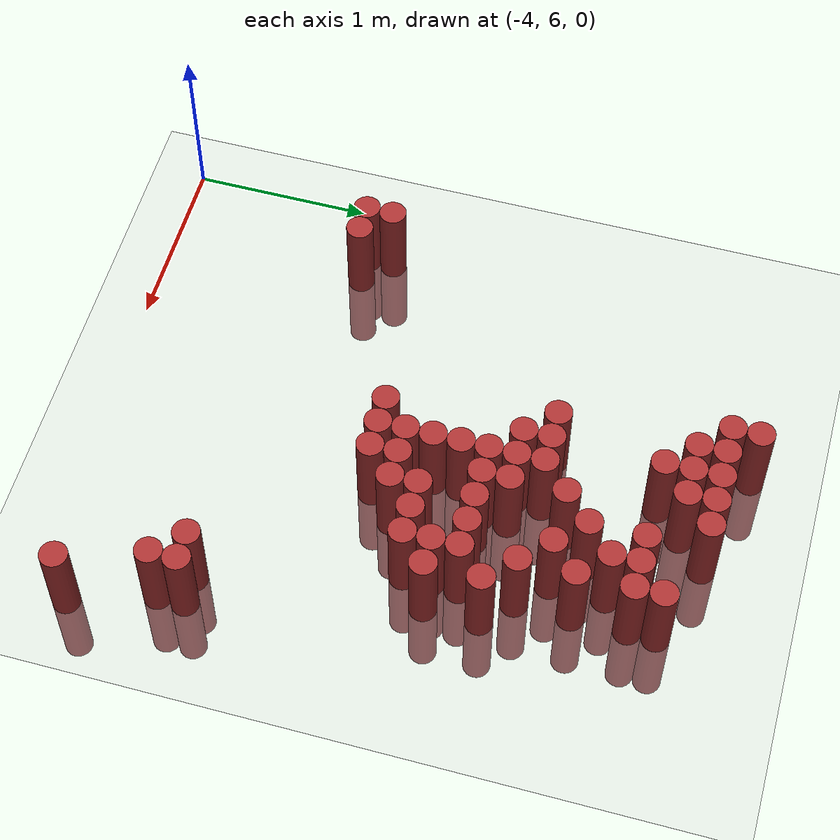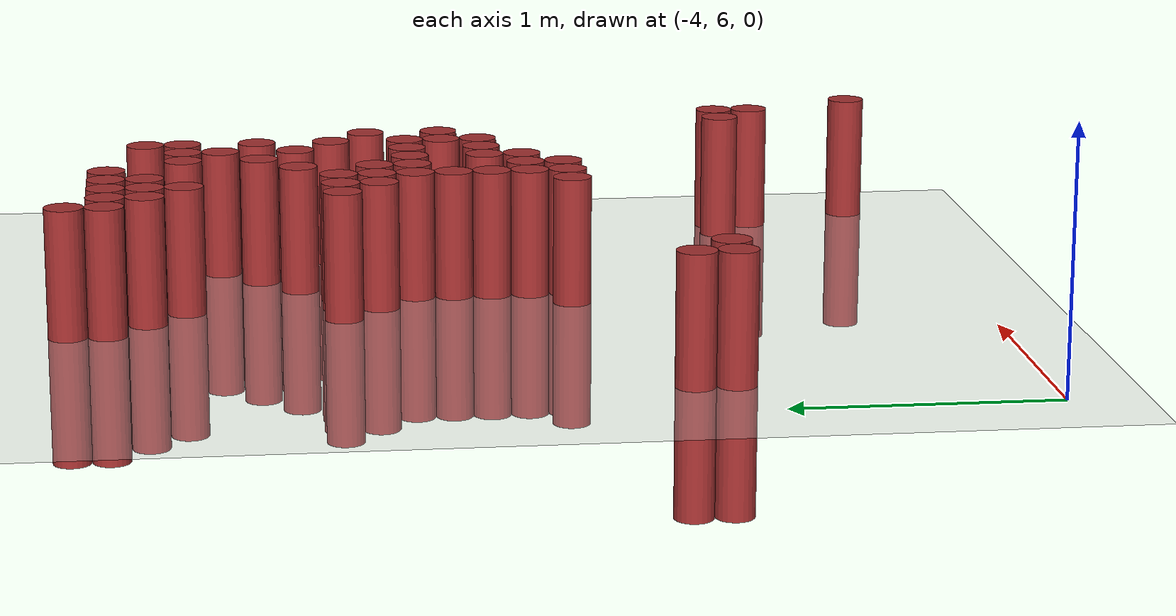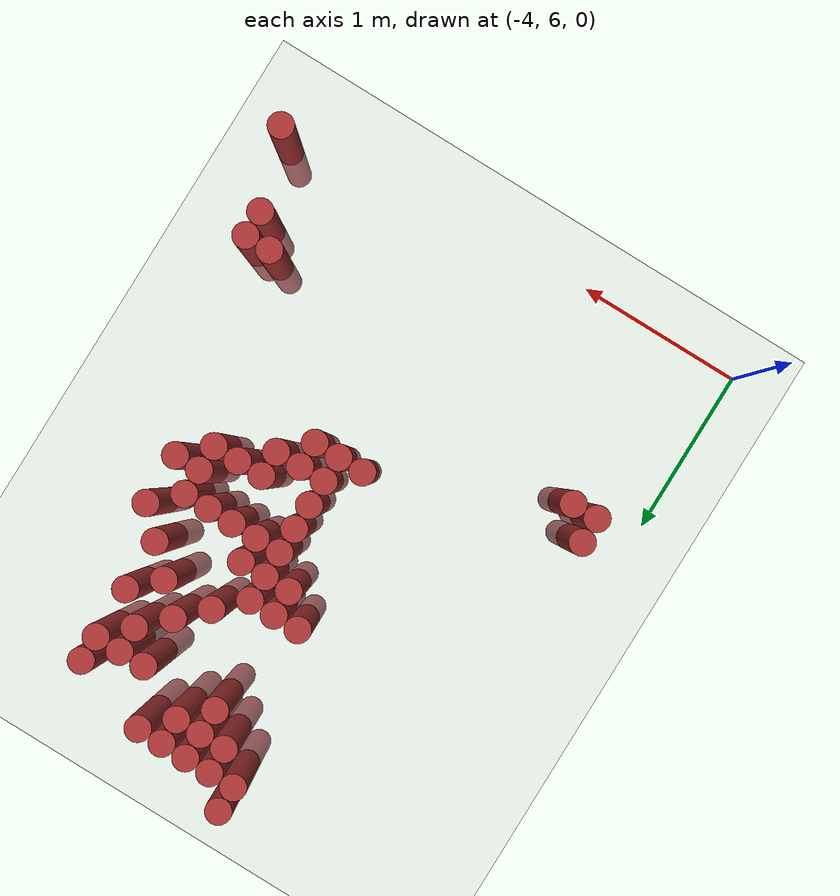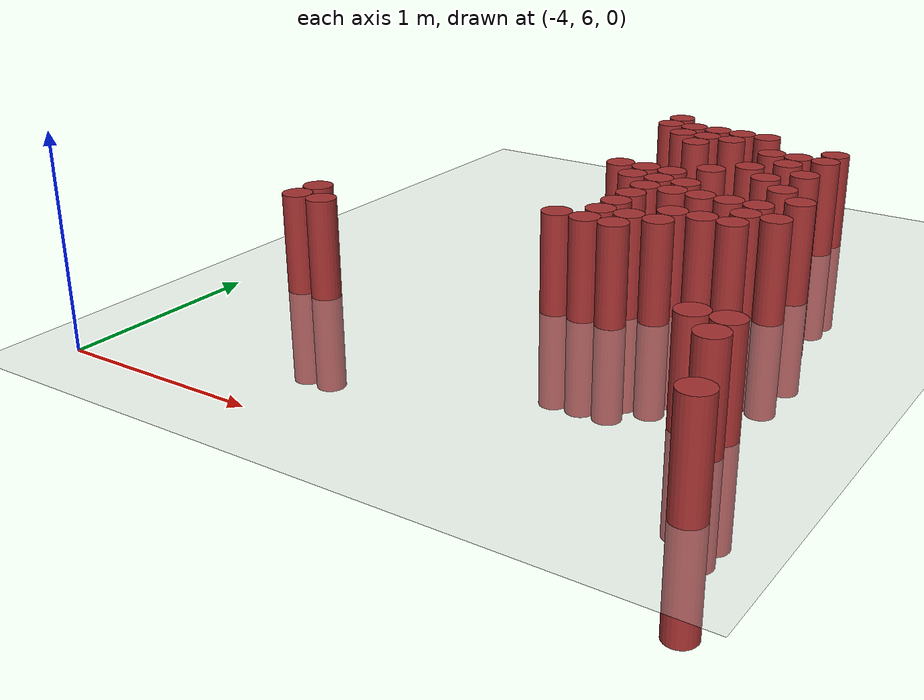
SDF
<sdf version="1.6">
 <world name="default">
  <model name="ground_plane">
   <static>1</static>
   <link name="link">
    <collision name="collision">
     <geometry><plane><normal>0 0 1</normal><size>100 100</size></plane></geometry>
     <surface><friction><ode><mu>100</mu><mu2>50</mu2></ode></friction></surface>
    </collision>
    <visual name="visual">
     <cast_shadows>0</cast_shadows>
     <geometry><plane><normal>0 0 1</normal><size>100 100</size></plane></geometry>
     <material>
      <script><uri>file://media/materials/scripts/gazebo.material</uri><name>Gazebo/Grey</name></script>
     </material>
    </visual>
   </link>
  </model>
  <model name="unit_cylinder_169">
   <static>1</static>
   <pose>-3.675000 7.125000 0.000000 0.000000 0.000000 0.000000</pose>
   <link name="link">
    <inertial>
     <mass>1</mass>
     <inertia><ixx>0.145833</ixx><ixy>0</ixy><ixz>0</ixz><iyy>0.145833</iyy><iyz>0</iyz><izz>0.125</izz></inertia>
    </inertial>
    <collision name="collision">
     <geometry><cylinder><radius>0.075000</radius><length>1</length></cylinder></geometry>
    </collision>
    <visual name="visual">
     <geometry><cylinder><radius>0.075000</radius><length>1</length></cylinder></geometry>
     <material>
      <ambient>0.648000 0.192000 0.192000 1</ambient>
      <diffuse>0.648000 0.192000 0.192000 1</diffuse>
     </material>
     <material>
      <script><name>Gazebo/Grey</name><uri>file://media/materials/scripts/gazebo.material</uri></script>
     </material>
    </visual>
   </link>
  </model>
  <model name="unit_cylinder_170">
   <static>1</static>
   <pose>-3.675000 7.275000 0.000000 0.000000 0.000000 0.000000</pose>
   <link name="link">
    <inertial>
     <mass>1</mass>
     <inertia><ixx>0.145833</ixx><ixy>0</ixy><ixz>0</ixz><iyy>0.145833</iyy><iyz>0</iyz><izz>0.125</izz></inertia>
    </inertial>
    <collision name="collision">
     <geometry><cylinder><radius>0.075000</radius><length>1</length></cylinder></geometry>
    </collision>
    <visual name="visual">
     <geometry><cylinder><radius>0.075000</radius><length>1</length></cylinder></geometry>
     <material>
      <ambient>0.648000 0.192000 0.192000 1</ambient>
      <diffuse>0.648000 0.192000 0.192000 1</diffuse>
     </material>
     <material>
      <script><name>Gazebo/Grey</name><uri>file://media/materials/scripts/gazebo.material</uri></script>
     </material>
    </visual>
   </link>
  </model>
  <model name="unit_cylinder_173">
   <static>1</static>
   <pose>-3.525000 7.125000 0.000000 0.000000 0.000000 0.000000</pose>
   <link name="link">
    <inertial>
     <mass>1</mass>
     <inertia><ixx>0.145833</ixx><ixy>0</ixy><ixz>0</ixz><iyy>0.145833</iyy><iyz>0</iyz><izz>0.125</izz></inertia>
    </inertial>
    <collision name="collision">
     <geometry><cylinder><radius>0.075000</radius><length>1</length></cylinder></geometry>
    </collision>
    <visual name="visual">
     <geometry><cylinder><radius>0.075000</radius><length>1</length></cylinder></geometry>
     <material>
      <ambient>0.648000 0.192000 0.192000 1</ambient>
      <diffuse>0.648000 0.192000 0.192000 1</diffuse>
     </material>
     <material>
      <script><name>Gazebo/Grey</name><uri>file://media/materials/scripts/gazebo.material</uri></script>
     </material>
    </visual>
   </link>
  </model>
  <model name="unit_cylinder_178">
   <static>1</static>
   <pose>-2.775000 9.375000 0.000000 0.000000 0.000000 0.000000</pose>
   <link name="link">
    <inertial>
     <mass>1</mass>
     <inertia><ixx>0.145833</ixx><ixy>0</ixy><ixz>0</ixz><iyy>0.145833</iyy><iyz>0</iyz><izz>0.125</izz></inertia>
    </inertial>
    <collision name="collision">
     <geometry><cylinder><radius>0.075000</radius><length>1</length></cylinder></geometry>
    </collision>
    <visual name="visual">
     <geometry><cylinder><radius>0.075000</radius><length>1</length></cylinder></geometry>
     <material>
      <ambient>0.648000 0.192000 0.192000 1</ambient>
      <diffuse>0.648000 0.192000 0.192000 1</diffuse>
     </material>
     <material>
      <script><name>Gazebo/Grey</name><uri>file://media/materials/scripts/gazebo.material</uri></script>
     </material>
    </visual>
   </link>
  </model>
  <model name="unit_cylinder_179">
   <static>1</static>
   <pose>-2.775000 9.525000 0.000000 0.000000 0.000000 0.000000</pose>
   <link name="link">
    <inertial>
     <mass>1</mass>
     <inertia><ixx>0.145833</ixx><ixy>0</ixy><ixz>0</ixz><iyy>0.145833</iyy><iyz>0</iyz><izz>0.125</izz></inertia>
    </inertial>
    <collision name="collision">
     <geometry><cylinder><radius>0.075000</radius><length>1</length></cylinder></geometry>
    </collision>
    <visual name="visual">
     <geometry><cylinder><radius>0.075000</radius><length>1</length></cylinder></geometry>
     <material>
      <ambient>0.648000 0.192000 0.192000 1</ambient>
      <diffuse>0.648000 0.192000 0.192000 1</diffuse>
     </material>
     <material>
      <script><name>Gazebo/Grey</name><uri>file://media/materials/scripts/gazebo.material</uri></script>
     </material>
    </visual>
   </link>
  </model>
  <model name="unit_cylinder_181">
   <static>1</static>
   <pose>-2.625000 8.475000 0.000000 0.000000 0.000000 0.000000</pose>
   <link name="link">
    <inertial>
     <mass>1</mass>
     <inertia><ixx>0.145833</ixx><ixy>0</ixy><ixz>0</ixz><iyy>0.145833</iyy><iyz>0</iyz><izz>0.125</izz></inertia>
    </inertial>
    <collision name="collision">
     <geometry><cylinder><radius>0.075000</radius><length>1</length></cylinder></geometry>
    </collision>
    <visual name="visual">
     <geometry><cylinder><radius>0.075000</radius><length>1</length></cylinder></geometry>
     <material>
      <ambient>0.648000 0.192000 0.192000 1</ambient>
      <diffuse>0.648000 0.192000 0.192000 1</diffuse>
     </material>
     <material>
      <script><name>Gazebo/Grey</name><uri>file://media/materials/scripts/gazebo.material</uri></script>
     </material>
    </visual>
   </link>
  </model>
  <model name="unit_cylinder_182">
   <static>1</static>
   <pose>-2.625000 9.225000 0.000000 0.000000 0.000000 0.000000</pose>
   <link name="link">
    <inertial>
     <mass>1</mass>
     <inertia><ixx>0.145833</ixx><ixy>0</ixy><ixz>0</ixz><iyy>0.145833</iyy><iyz>0</iyz><izz>0.125</izz></inertia>
    </inertial>
    <collision name="collision">
     <geometry><cylinder><radius>0.075000</radius><length>1</length></cylinder></geometry>
    </collision>
    <visual name="visual">
     <geometry><cylinder><radius>0.075000</radius><length>1</length></cylinder></geometry>
     <material>
      <ambient>0.648000 0.192000 0.192000 1</ambient>
      <diffuse>0.648000 0.192000 0.192000 1</diffuse>
     </material>
     <material>
      <script><name>Gazebo/Grey</name><uri>file://media/materials/scripts/gazebo.material</uri></script>
     </material>
    </visual>
   </link>
  </model>
  <model name="unit_cylinder_183">
   <static>1</static>
   <pose>-2.625000 9.375000 0.000000 0.000000 0.000000 0.000000</pose>
   <link name="link">
    <inertial>
     <mass>1</mass>
     <inertia><ixx>0.145833</ixx><ixy>0</ixy><ixz>0</ixz><iyy>0.145833</iyy><iyz>0</iyz><izz>0.125</izz></inertia>
    </inertial>
    <collision name="collision">
     <geometry><cylinder><radius>0.075000</radius><length>1</length></cylinder></geometry>
    </collision>
    <visual name="visual">
     <geometry><cylinder><radius>0.075000</radius><length>1</length></cylinder></geometry>
     <material>
      <ambient>0.648000 0.192000 0.192000 1</ambient>
      <diffuse>0.648000 0.192000 0.192000 1</diffuse>
     </material>
     <material>
      <script><name>Gazebo/Grey</name><uri>file://media/materials/scripts/gazebo.material</uri></script>
     </material>
    </visual>
   </link>
  </model>
  <model name="unit_cylinder_186">
   <static>1</static>
   <pose>-2.475000 7.575000 0.000000 0.000000 0.000000 0.000000</pose>
   <link name="link">
    <inertial>
     <mass>1</mass>
     <inertia><ixx>0.145833</ixx><ixy>0</ixy><ixz>0</ixz><iyy>0.145833</iyy><iyz>0</iyz><izz>0.125</izz></inertia>
    </inertial>
    <collision name="collision">
     <geometry><cylinder><radius>0.075000</radius><length>1</length></cylinder></geometry>
    </collision>
    <visual name="visual">
     <geometry><cylinder><radius>0.075000</radius><length>1</length></cylinder></geometry>
     <material>
      <ambient>0.648000 0.192000 0.192000 1</ambient>
      <diffuse>0.648000 0.192000 0.192000 1</diffuse>
     </material>
     <material>
      <script><name>Gazebo/Grey</name><uri>file://media/materials/scripts/gazebo.material</uri></script>
     </material>
    </visual>
   </link>
  </model>
  <model name="unit_cylinder_187">
   <static>1</static>
   <pose>-2.475000 8.325000 0.000000 0.000000 0.000000 0.000000</pose>
   <link name="link">
    <inertial>
     <mass>1</mass>
     <inertia><ixx>0.145833</ixx><ixy>0</ixy><ixz>0</ixz><iyy>0.145833</iyy><iyz>0</iyz><izz>0.125</izz></inertia>
    </inertial>
    <collision name="collision">
     <geometry><cylinder><radius>0.075000</radius><length>1</length></cylinder></geometry>
    </collision>
    <visual name="visual">
     <geometry><cylinder><radius>0.075000</radius><length>1</length></cylinder></geometry>
     <material>
      <ambient>0.648000 0.192000 0.192000 1</ambient>
      <diffuse>0.648000 0.192000 0.192000 1</diffuse>
     </material>
     <material>
      <script><name>Gazebo/Grey</name><uri>file://media/materials/scripts/gazebo.material</uri></script>
     </material>
    </visual>
   </link>
  </model>
  <model name="unit_cylinder_188">
   <static>1</static>
   <pose>-2.475000 8.475000 0.000000 0.000000 0.000000 0.000000</pose>
   <link name="link">
    <inertial>
     <mass>1</mass>
     <inertia><ixx>0.145833</ixx><ixy>0</ixy><ixz>0</ixz><iyy>0.145833</iyy><iyz>0</iyz><izz>0.125</izz></inertia>
    </inertial>
    <collision name="collision">
     <geometry><cylinder><radius>0.075000</radius><length>1</length></cylinder></geometry>
    </collision>
    <visual name="visual">
     <geometry><cylinder><radius>0.075000</radius><length>1</length></cylinder></geometry>
     <material>
      <ambient>0.648000 0.192000 0.192000 1</ambient>
      <diffuse>0.648000 0.192000 0.192000 1</diffuse>
     </material>
     <material>
      <script><name>Gazebo/Grey</name><uri>file://media/materials/scripts/gazebo.material</uri></script>
     </material>
    </visual>
   </link>
  </model>
  <model name="unit_cylinder_189">
   <static>1</static>
   <pose>-2.475000 9.075000 0.000000 0.000000 0.000000 0.000000</pose>
   <link name="link">
    <inertial>
     <mass>1</mass>
     <inertia><ixx>0.145833</ixx><ixy>0</ixy><ixz>0</ixz><iyy>0.145833</iyy><iyz>0</iyz><izz>0.125</izz></inertia>
    </inertial>
    <collision name="collision">
     <geometry><cylinder><radius>0.075000</radius><length>1</length></cylinder></geometry>
    </collision>
    <visual name="visual">
     <geometry><cylinder><radius>0.075000</radius><length>1</length></cylinder></geometry>
     <material>
      <ambient>0.648000 0.192000 0.192000 1</ambient>
      <diffuse>0.648000 0.192000 0.192000 1</diffuse>
     </material>
     <material>
      <script><name>Gazebo/Grey</name><uri>file://media/materials/scripts/gazebo.material</uri></script>
     </material>
    </visual>
   </link>
  </model>
  <model name="unit_cylinder_190">
   <static>1</static>
   <pose>-2.475000 9.225000 0.000000 0.000000 0.000000 0.000000</pose>
   <link name="link">
    <inertial>
     <mass>1</mass>
     <inertia><ixx>0.145833</ixx><ixy>0</ixy><ixz>0</ixz><iyy>0.145833</iyy><iyz>0</iyz><izz>0.125</izz></inertia>
    </inertial>
    <collision name="collision">
     <geometry><cylinder><radius>0.075000</radius><length>1</length></cylinder></geometry>
    </collision>
    <visual name="visual">
     <geometry><cylinder><radius>0.075000</radius><length>1</length></cylinder></geometry>
     <material>
      <ambient>0.648000 0.192000 0.192000 1</ambient>
      <diffuse>0.648000 0.192000 0.192000 1</diffuse>
     </material>
     <material>
      <script><name>Gazebo/Grey</name><uri>file://media/materials/scripts/gazebo.material</uri></script>
     </material>
    </visual>
   </link>
  </model>
  <model name="unit_cylinder_191">
   <static>1</static>
   <pose>-2.475000 9.375000 0.000000 0.000000 0.000000 0.000000</pose>
   <link name="link">
    <inertial>
     <mass>1</mass>
     <inertia><ixx>0.145833</ixx><ixy>0</ixy><ixz>0</ixz><iyy>0.145833</iyy><iyz>0</iyz><izz>0.125</izz></inertia>
    </inertial>
    <collision name="collision">
     <geometry><cylinder><radius>0.075000</radius><length>1</length></cylinder></geometry>
    </collision>
    <visual name="visual">
     <geometry><cylinder><radius>0.075000</radius><length>1</length></cylinder></geometry>
     <material>
      <ambient>0.648000 0.192000 0.192000 1</ambient>
      <diffuse>0.648000 0.192000 0.192000 1</diffuse>
     </material>
     <material>
      <script><name>Gazebo/Grey</name><uri>file://media/materials/scripts/gazebo.material</uri></script>
     </material>
    </visual>
   </link>
  </model>
  <model name="unit_cylinder_193">
   <static>1</static>
   <pose>-2.325000 7.575000 0.000000 0.000000 0.000000 0.000000</pose>
   <link name="link">
    <inertial>
     <mass>1</mass>
     <inertia><ixx>0.145833</ixx><ixy>0</ixy><ixz>0</ixz><iyy>0.145833</iyy><iyz>0</iyz><izz>0.125</izz></inertia>
    </inertial>
    <collision name="collision">
     <geometry><cylinder><radius>0.075000</radius><length>1</length></cylinder></geometry>
    </collision>
    <visual name="visual">
     <geometry><cylinder><radius>0.075000</radius><length>1</length></cylinder></geometry>
     <material>
      <ambient>0.648000 0.192000 0.192000 1</ambient>
      <diffuse>0.648000 0.192000 0.192000 1</diffuse>
     </material>
     <material>
      <script><name>Gazebo/Grey</name><uri>file://media/materials/scripts/gazebo.material</uri></script>
     </material>
    </visual>
   </link>
  </model>
  <model name="unit_cylinder_194">
   <static>1</static>
   <pose>-2.325000 7.725000 0.000000 0.000000 0.000000 0.000000</pose>
   <link name="link">
    <inertial>
     <mass>1</mass>
     <inertia><ixx>0.145833</ixx><ixy>0</ixy><ixz>0</ixz><iyy>0.145833</iyy><iyz>0</iyz><izz>0.125</izz></inertia>
    </inertial>
    <collision name="collision">
     <geometry><cylinder><radius>0.075000</radius><length>1</length></cylinder></geometry>
    </collision>
    <visual name="visual">
     <geometry><cylinder><radius>0.075000</radius><length>1</length></cylinder></geometry>
     <material>
      <ambient>0.648000 0.192000 0.192000 1</ambient>
      <diffuse>0.648000 0.192000 0.192000 1</diffuse>
     </material>
     <material>
      <script><name>Gazebo/Grey</name><uri>file://media/materials/scripts/gazebo.material</uri></script>
     </material>
    </visual>
   </link>
  </model>
  <model name="unit_cylinder_195">
   <static>1</static>
   <pose>-2.325000 7.875000 0.000000 0.000000 0.000000 0.000000</pose>
   <link name="link">
    <inertial>
     <mass>1</mass>
     <inertia><ixx>0.145833</ixx><ixy>0</ixy><ixz>0</ixz><iyy>0.145833</iyy><iyz>0</iyz><izz>0.125</izz></inertia>
    </inertial>
    <collision name="collision">
     <geometry><cylinder><radius>0.075000</radius><length>1</length></cylinder></geometry>
    </collision>
    <visual name="visual">
     <geometry><cylinder><radius>0.075000</radius><length>1</length></cylinder></geometry>
     <material>
      <ambient>0.648000 0.192000 0.192000 1</ambient>
      <diffuse>0.648000 0.192000 0.192000 1</diffuse>
     </material>
     <material>
      <script><name>Gazebo/Grey</name><uri>file://media/materials/scripts/gazebo.material</uri></script>
     </material>
    </visual>
   </link>
  </model>
  <model name="unit_cylinder_196">
   <static>1</static>
   <pose>-2.325000 8.025000 0.000000 0.000000 0.000000 0.000000</pose>
   <link name="link">
    <inertial>
     <mass>1</mass>
     <inertia><ixx>0.145833</ixx><ixy>0</ixy><ixz>0</ixz><iyy>0.145833</iyy><iyz>0</iyz><izz>0.125</izz></inertia>
    </inertial>
    <collision name="collision">
     <geometry><cylinder><radius>0.075000</radius><length>1</length></cylinder></geometry>
    </collision>
    <visual name="visual">
     <geometry><cylinder><radius>0.075000</radius><length>1</length></cylinder></geometry>
     <material>
      <ambient>0.648000 0.192000 0.192000 1</ambient>
      <diffuse>0.648000 0.192000 0.192000 1</diffuse>
     </material>
     <material>
      <script><name>Gazebo/Grey</name><uri>file://media/materials/scripts/gazebo.material</uri></script>
     </material>
    </visual>
   </link>
  </model>
  <model name="unit_cylinder_197">
   <static>1</static>
   <pose>-2.325000 8.175000 0.000000 0.000000 0.000000 0.000000</pose>
   <link name="link">
    <inertial>
     <mass>1</mass>
     <inertia><ixx>0.145833</ixx><ixy>0</ixy><ixz>0</ixz><iyy>0.145833</iyy><iyz>0</iyz><izz>0.125</izz></inertia>
    </inertial>
    <collision name="collision">
     <geometry><cylinder><radius>0.075000</radius><length>1</length></cylinder></geometry>
    </collision>
    <visual name="visual">
     <geometry><cylinder><radius>0.075000</radius><length>1</length></cylinder></geometry>
     <material>
      <ambient>0.648000 0.192000 0.192000 1</ambient>
      <diffuse>0.648000 0.192000 0.192000 1</diffuse>
     </material>
     <material>
      <script><name>Gazebo/Grey</name><uri>file://media/materials/scripts/gazebo.material</uri></script>
     </material>
    </visual>
   </link>
  </model>
  <model name="unit_cylinder_198">
   <static>1</static>
   <pose>-2.325000 8.325000 0.000000 0.000000 0.000000 0.000000</pose>
   <link name="link">
    <inertial>
     <mass>1</mass>
     <inertia><ixx>0.145833</ixx><ixy>0</ixy><ixz>0</ixz><iyy>0.145833</iyy><iyz>0</iyz><izz>0.125</izz></inertia>
    </inertial>
    <collision name="collision">
     <geometry><cylinder><radius>0.075000</radius><length>1</length></cylinder></geometry>
    </collision>
    <visual name="visual">
     <geometry><cylinder><radius>0.075000</radius><length>1</length></cylinder></geometry>
     <material>
      <ambient>0.648000 0.192000 0.192000 1</ambient>
      <diffuse>0.648000 0.192000 0.192000 1</diffuse>
     </material>
     <material>
      <script><name>Gazebo/Grey</name><uri>file://media/materials/scripts/gazebo.material</uri></script>
     </material>
    </visual>
   </link>
  </model>
  <model name="unit_cylinder_199">
   <static>1</static>
   <pose>-2.325000 8.475000 0.000000 0.000000 0.000000 0.000000</pose>
   <link name="link">
    <inertial>
     <mass>1</mass>
     <inertia><ixx>0.145833</ixx><ixy>0</ixy><ixz>0</ixz><iyy>0.145833</iyy><iyz>0</iyz><izz>0.125</izz></inertia>
    </inertial>
    <collision name="collision">
     <geometry><cylinder><radius>0.075000</radius><length>1</length></cylinder></geometry>
    </collision>
    <visual name="visual">
     <geometry><cylinder><radius>0.075000</radius><length>1</length></cylinder></geometry>
     <material>
      <ambient>0.648000 0.192000 0.192000 1</ambient>
      <diffuse>0.648000 0.192000 0.192000 1</diffuse>
     </material>
     <material>
      <script><name>Gazebo/Grey</name><uri>file://media/materials/scripts/gazebo.material</uri></script>
     </material>
    </visual>
   </link>
  </model>
  <model name="unit_cylinder_200">
   <static>1</static>
   <pose>-2.325000 9.225000 0.000000 0.000000 0.000000 0.000000</pose>
   <link name="link">
    <inertial>
     <mass>1</mass>
     <inertia><ixx>0.145833</ixx><ixy>0</ixy><ixz>0</ixz><iyy>0.145833</iyy><iyz>0</iyz><izz>0.125</izz></inertia>
    </inertial>
    <collision name="collision">
     <geometry><cylinder><radius>0.075000</radius><length>1</length></cylinder></geometry>
    </collision>
    <visual name="visual">
     <geometry><cylinder><radius>0.075000</radius><length>1</length></cylinder></geometry>
     <material>
      <ambient>0.648000 0.192000 0.192000 1</ambient>
      <diffuse>0.648000 0.192000 0.192000 1</diffuse>
     </material>
     <material>
      <script><name>Gazebo/Grey</name><uri>file://media/materials/scripts/gazebo.material</uri></script>
     </material>
    </visual>
   </link>
  </model>
  <model name="unit_cylinder_201">
   <static>1</static>
   <pose>-2.325000 9.375000 0.000000 0.000000 0.000000 0.000000</pose>
   <link name="link">
    <inertial>
     <mass>1</mass>
     <inertia><ixx>0.145833</ixx><ixy>0</ixy><ixz>0</ixz><iyy>0.145833</iyy><iyz>0</iyz><izz>0.125</izz></inertia>
    </inertial>
    <collision name="collision">
     <geometry><cylinder><radius>0.075000</radius><length>1</length></cylinder></geometry>
    </collision>
    <visual name="visual">
     <geometry><cylinder><radius>0.075000</radius><length>1</length></cylinder></geometry>
     <material>
      <ambient>0.648000 0.192000 0.192000 1</ambient>
      <diffuse>0.648000 0.192000 0.192000 1</diffuse>
     </material>
     <material>
      <script><name>Gazebo/Grey</name><uri>file://media/materials/scripts/gazebo.material</uri></script>
     </material>
    </visual>
   </link>
  </model>
  <model name="unit_cylinder_202">
   <static>1</static>
   <pose>-2.175000 7.575000 0.000000 0.000000 0.000000 0.000000</pose>
   <link name="link">
    <inertial>
     <mass>1</mass>
     <inertia><ixx>0.145833</ixx><ixy>0</ixy><ixz>0</ixz><iyy>0.145833</iyy><iyz>0</iyz><izz>0.125</izz></inertia>
    </inertial>
    <collision name="collision">
     <geometry><cylinder><radius>0.075000</radius><length>1</length></cylinder></geometry>
    </collision>
    <visual name="visual">
     <geometry><cylinder><radius>0.075000</radius><length>1</length></cylinder></geometry>
     <material>
      <ambient>0.648000 0.192000 0.192000 1</ambient>
      <diffuse>0.648000 0.192000 0.192000 1</diffuse>
     </material>
     <material>
      <script><name>Gazebo/Grey</name><uri>file://media/materials/scripts/gazebo.material</uri></script>
     </material>
    </visual>
   </link>
  </model>
  <model name="unit_cylinder_203">
   <static>1</static>
   <pose>-2.175000 7.725000 0.000000 0.000000 0.000000 0.000000</pose>
   <link name="link">
    <inertial>
     <mass>1</mass>
     <inertia><ixx>0.145833</ixx><ixy>0</ixy><ixz>0</ixz><iyy>0.145833</iyy><iyz>0</iyz><izz>0.125</izz></inertia>
    </inertial>
    <collision name="collision">
     <geometry><cylinder><radius>0.075000</radius><length>1</length></cylinder></geometry>
    </collision>
    <visual name="visual">
     <geometry><cylinder><radius>0.075000</radius><length>1</length></cylinder></geometry>
     <material>
      <ambient>0.648000 0.192000 0.192000 1</ambient>
      <diffuse>0.648000 0.192000 0.192000 1</diffuse>
     </material>
     <material>
      <script><name>Gazebo/Grey</name><uri>file://media/materials/scripts/gazebo.material</uri></script>
     </material>
    </visual>
   </link>
  </model>
  <model name="unit_cylinder_204">
   <static>1</static>
   <pose>-2.175000 8.175000 0.000000 0.000000 0.000000 0.000000</pose>
   <link name="link">
    <inertial>
     <mass>1</mass>
     <inertia><ixx>0.145833</ixx><ixy>0</ixy><ixz>0</ixz><iyy>0.145833</iyy><iyz>0</iyz><izz>0.125</izz></inertia>
    </inertial>
    <collision name="collision">
     <geometry><cylinder><radius>0.075000</radius><length>1</length></cylinder></geometry>
    </collision>
    <visual name="visual">
     <geometry><cylinder><radius>0.075000</radius><length>1</length></cylinder></geometry>
     <material>
      <ambient>0.648000 0.192000 0.192000 1</ambient>
      <diffuse>0.648000 0.192000 0.192000 1</diffuse>
     </material>
     <material>
      <script><name>Gazebo/Grey</name><uri>file://media/materials/scripts/gazebo.material</uri></script>
     </material>
    </visual>
   </link>
  </model>
  <model name="unit_cylinder_205">
   <static>1</static>
   <pose>-2.175000 8.325000 0.000000 0.000000 0.000000 0.000000</pose>
   <link name="link">
    <inertial>
     <mass>1</mass>
     <inertia><ixx>0.145833</ixx><ixy>0</ixy><ixz>0</ixz><iyy>0.145833</iyy><iyz>0</iyz><izz>0.125</izz></inertia>
    </inertial>
    <collision name="collision">
     <geometry><cylinder><radius>0.075000</radius><length>1</length></cylinder></geometry>
    </collision>
    <visual name="visual">
     <geometry><cylinder><radius>0.075000</radius><length>1</length></cylinder></geometry>
     <material>
      <ambient>0.648000 0.192000 0.192000 1</ambient>
      <diffuse>0.648000 0.192000 0.192000 1</diffuse>
     </material>
     <material>
      <script><name>Gazebo/Grey</name><uri>file://media/materials/scripts/gazebo.material</uri></script>
     </material>
    </visual>
   </link>
  </model>
  <model name="unit_cylinder_206">
   <static>1</static>
   <pose>-2.175000 8.625000 0.000000 0.000000 0.000000 0.000000</pose>
   <link name="link">
    <inertial>
     <mass>1</mass>
     <inertia><ixx>0.145833</ixx><ixy>0</ixy><ixz>0</ixz><iyy>0.145833</iyy><iyz>0</iyz><izz>0.125</izz></inertia>
    </inertial>
    <collision name="collision">
     <geometry><cylinder><radius>0.075000</radius><length>1</length></cylinder></geometry>
    </collision>
    <visual name="visual">
     <geometry><cylinder><radius>0.075000</radius><length>1</length></cylinder></geometry>
     <material>
      <ambient>0.648000 0.192000 0.192000 1</ambient>
      <diffuse>0.648000 0.192000 0.192000 1</diffuse>
     </material>
     <material>
      <script><name>Gazebo/Grey</name><uri>file://media/materials/scripts/gazebo.material</uri></script>
     </material>
    </visual>
   </link>
  </model>
  <model name="unit_cylinder_207">
   <static>1</static>
   <pose>-2.175000 9.375000 0.000000 0.000000 0.000000 0.000000</pose>
   <link name="link">
    <inertial>
     <mass>1</mass>
     <inertia><ixx>0.145833</ixx><ixy>0</ixy><ixz>0</ixz><iyy>0.145833</iyy><iyz>0</iyz><izz>0.125</izz></inertia>
    </inertial>
    <collision name="collision">
     <geometry><cylinder><radius>0.075000</radius><length>1</length></cylinder></geometry>
    </collision>
    <visual name="visual">
     <geometry><cylinder><radius>0.075000</radius><length>1</length></cylinder></geometry>
     <material>
      <ambient>0.648000 0.192000 0.192000 1</ambient>
      <diffuse>0.648000 0.192000 0.192000 1</diffuse>
     </material>
     <material>
      <script><name>Gazebo/Grey</name><uri>file://media/materials/scripts/gazebo.material</uri></script>
     </material>
    </visual>
   </link>
  </model>
  <model name="unit_cylinder_208">
   <static>1</static>
   <pose>-2.025000 7.725000 0.000000 0.000000 0.000000 0.000000</pose>
   <link name="link">
    <inertial>
     <mass>1</mass>
     <inertia><ixx>0.145833</ixx><ixy>0</ixy><ixz>0</ixz><iyy>0.145833</iyy><iyz>0</iyz><izz>0.125</izz></inertia>
    </inertial>
    <collision name="collision">
     <geometry><cylinder><radius>0.075000</radius><length>1</length></cylinder></geometry>
    </collision>
    <visual name="visual">
     <geometry><cylinder><radius>0.075000</radius><length>1</length></cylinder></geometry>
     <material>
      <ambient>0.648000 0.192000 0.192000 1</ambient>
      <diffuse>0.648000 0.192000 0.192000 1</diffuse>
     </material>
     <material>
      <script><name>Gazebo/Grey</name><uri>file://media/materials/scripts/gazebo.material</uri></script>
     </material>
    </visual>
   </link>
  </model>
  <model name="unit_cylinder_209">
   <static>1</static>
   <pose>-2.025000 7.875000 0.000000 0.000000 0.000000 0.000000</pose>
   <link name="link">
    <inertial>
     <mass>1</mass>
     <inertia><ixx>0.145833</ixx><ixy>0</ixy><ixz>0</ixz><iyy>0.145833</iyy><iyz>0</iyz><izz>0.125</izz></inertia>
    </inertial>
    <collision name="collision">
     <geometry><cylinder><radius>0.075000</radius><length>1</length></cylinder></geometry>
    </collision>
    <visual name="visual">
     <geometry><cylinder><radius>0.075000</radius><length>1</length></cylinder></geometry>
     <material>
      <ambient>0.648000 0.192000 0.192000 1</ambient>
      <diffuse>0.648000 0.192000 0.192000 1</diffuse>
     </material>
     <material>
      <script><name>Gazebo/Grey</name><uri>file://media/materials/scripts/gazebo.material</uri></script>
     </material>
    </visual>
   </link>
  </model>
  <model name="unit_cylinder_210">
   <static>1</static>
   <pose>-2.025000 8.175000 0.000000 0.000000 0.000000 0.000000</pose>
   <link name="link">
    <inertial>
     <mass>1</mass>
     <inertia><ixx>0.145833</ixx><ixy>0</ixy><ixz>0</ixz><iyy>0.145833</iyy><iyz>0</iyz><izz>0.125</izz></inertia>
    </inertial>
    <collision name="collision">
     <geometry><cylinder><radius>0.075000</radius><length>1</length></cylinder></geometry>
    </collision>
    <visual name="visual">
     <geometry><cylinder><radius>0.075000</radius><length>1</length></cylinder></geometry>
     <material>
      <ambient>0.648000 0.192000 0.192000 1</ambient>
      <diffuse>0.648000 0.192000 0.192000 1</diffuse>
     </material>
     <material>
      <script><name>Gazebo/Grey</name><uri>file://media/materials/scripts/gazebo.material</uri></script>
     </material>
    </visual>
   </link>
  </model>
  <model name="unit_cylinder_211">
   <static>1</static>
   <pose>-2.025000 8.775000 0.000000 0.000000 0.000000 0.000000</pose>
   <link name="link">
    <inertial>
     <mass>1</mass>
     <inertia><ixx>0.145833</ixx><ixy>0</ixy><ixz>0</ixz><iyy>0.145833</iyy><iyz>0</iyz><izz>0.125</izz></inertia>
    </inertial>
    <collision name="collision">
     <geometry><cylinder><radius>0.075000</radius><length>1</length></cylinder></geometry>
    </collision>
    <visual name="visual">
     <geometry><cylinder><radius>0.075000</radius><length>1</length></cylinder></geometry>
     <material>
      <ambient>0.648000 0.192000 0.192000 1</ambient>
      <diffuse>0.648000 0.192000 0.192000 1</diffuse>
     </material>
     <material>
      <script><name>Gazebo/Grey</name><uri>file://media/materials/scripts/gazebo.material</uri></script>
     </material>
    </visual>
   </link>
  </model>
  <model name="unit_cylinder_212">
   <static>1</static>
   <pose>-2.025000 9.075000 0.000000 0.000000 0.000000 0.000000</pose>
   <link name="link">
    <inertial>
     <mass>1</mass>
     <inertia><ixx>0.145833</ixx><ixy>0</ixy><ixz>0</ixz><iyy>0.145833</iyy><iyz>0</iyz><izz>0.125</izz></inertia>
    </inertial>
    <collision name="collision">
     <geometry><cylinder><radius>0.075000</radius><length>1</length></cylinder></geometry>
    </collision>
    <visual name="visual">
     <geometry><cylinder><radius>0.075000</radius><length>1</length></cylinder></geometry>
     <material>
      <ambient>0.648000 0.192000 0.192000 1</ambient>
      <diffuse>0.648000 0.192000 0.192000 1</diffuse>
     </material>
     <material>
      <script><name>Gazebo/Grey</name><uri>file://media/materials/scripts/gazebo.material</uri></script>
     </material>
    </visual>
   </link>
  </model>
  <model name="unit_cylinder_213">
   <static>1</static>
   <pose>-1.875000 7.875000 0.000000 0.000000 0.000000 0.000000</pose>
   <link name="link">
    <inertial>
     <mass>1</mass>
     <inertia><ixx>0.145833</ixx><ixy>0</ixy><ixz>0</ixz><iyy>0.145833</iyy><iyz>0</iyz><izz>0.125</izz></inertia>
    </inertial>
    <collision name="collision">
     <geometry><cylinder><radius>0.075000</radius><length>1</length></cylinder></geometry>
    </collision>
    <visual name="visual">
     <geometry><cylinder><radius>0.075000</radius><length>1</length></cylinder></geometry>
     <material>
      <ambient>0.648000 0.192000 0.192000 1</ambient>
      <diffuse>0.648000 0.192000 0.192000 1</diffuse>
     </material>
     <material>
      <script><name>Gazebo/Grey</name><uri>file://media/materials/scripts/gazebo.material</uri></script>
     </material>
    </visual>
   </link>
  </model>
  <model name="unit_cylinder_214">
   <static>1</static>
   <pose>-1.875000 8.175000 0.000000 0.000000 0.000000 0.000000</pose>
   <link name="link">
    <inertial>
     <mass>1</mass>
     <inertia><ixx>0.145833</ixx><ixy>0</ixy><ixz>0</ixz><iyy>0.145833</iyy><iyz>0</iyz><izz>0.125</izz></inertia>
    </inertial>
    <collision name="collision">
     <geometry><cylinder><radius>0.075000</radius><length>1</length></cylinder></geometry>
    </collision>
    <visual name="visual">
     <geometry><cylinder><radius>0.075000</radius><length>1</length></cylinder></geometry>
     <material>
      <ambient>0.648000 0.192000 0.192000 1</ambient>
      <diffuse>0.648000 0.192000 0.192000 1</diffuse>
     </material>
     <material>
      <script><name>Gazebo/Grey</name><uri>file://media/materials/scripts/gazebo.material</uri></script>
     </material>
    </visual>
   </link>
  </model>
  <model name="unit_cylinder_215">
   <static>1</static>
   <pose>-1.875000 8.625000 0.000000 0.000000 0.000000 0.000000</pose>
   <link name="link">
    <inertial>
     <mass>1</mass>
     <inertia><ixx>0.145833</ixx><ixy>0</ixy><ixz>0</ixz><iyy>0.145833</iyy><iyz>0</iyz><izz>0.125</izz></inertia>
    </inertial>
    <collision name="collision">
     <geometry><cylinder><radius>0.075000</radius><length>1</length></cylinder></geometry>
    </collision>
    <visual name="visual">
     <geometry><cylinder><radius>0.075000</radius><length>1</length></cylinder></geometry>
     <material>
      <ambient>0.648000 0.192000 0.192000 1</ambient>
      <diffuse>0.648000 0.192000 0.192000 1</diffuse>
     </material>
     <material>
      <script><name>Gazebo/Grey</name><uri>file://media/materials/scripts/gazebo.material</uri></script>
     </material>
    </visual>
   </link>
  </model>
  <model name="unit_cylinder_216">
   <static>1</static>
   <pose>-1.875000 8.925000 0.000000 0.000000 0.000000 0.000000</pose>
   <link name="link">
    <inertial>
     <mass>1</mass>
     <inertia><ixx>0.145833</ixx><ixy>0</ixy><ixz>0</ixz><iyy>0.145833</iyy><iyz>0</iyz><izz>0.125</izz></inertia>
    </inertial>
    <collision name="collision">
     <geometry><cylinder><radius>0.075000</radius><length>1</length></cylinder></geometry>
    </collision>
    <visual name="visual">
     <geometry><cylinder><radius>0.075000</radius><length>1</length></cylinder></geometry>
     <material>
      <ambient>0.648000 0.192000 0.192000 1</ambient>
      <diffuse>0.648000 0.192000 0.192000 1</diffuse>
     </material>
     <material>
      <script><name>Gazebo/Grey</name><uri>file://media/materials/scripts/gazebo.material</uri></script>
     </material>
    </visual>
   </link>
  </model>
  <model name="unit_cylinder_217">
   <static>1</static>
   <pose>-1.875000 9.075000 0.000000 0.000000 0.000000 0.000000</pose>
   <link name="link">
    <inertial>
     <mass>1</mass>
     <inertia><ixx>0.145833</ixx><ixy>0</ixy><ixz>0</ixz><iyy>0.145833</iyy><iyz>0</iyz><izz>0.125</izz></inertia>
    </inertial>
    <collision name="collision">
     <geometry><cylinder><radius>0.075000</radius><length>1</length></cylinder></geometry>
    </collision>
    <visual name="visual">
     <geometry><cylinder><radius>0.075000</radius><length>1</length></cylinder></geometry>
     <material>
      <ambient>0.648000 0.192000 0.192000 1</ambient>
      <diffuse>0.648000 0.192000 0.192000 1</diffuse>
     </material>
     <material>
      <script><name>Gazebo/Grey</name><uri>file://media/materials/scripts/gazebo.material</uri></script>
     </material>
    </visual>
   </link>
  </model>
  <model name="unit_cylinder_218">
   <static>1</static>
   <pose>-1.725000 7.875000 0.000000 0.000000 0.000000 0.000000</pose>
   <link name="link">
    <inertial>
     <mass>1</mass>
     <inertia><ixx>0.145833</ixx><ixy>0</ixy><ixz>0</ixz><iyy>0.145833</iyy><iyz>0</iyz><izz>0.125</izz></inertia>
    </inertial>
    <collision name="collision">
     <geometry><cylinder><radius>0.075000</radius><length>1</length></cylinder></geometry>
    </collision>
    <visual name="visual">
     <geometry><cylinder><radius>0.075000</radius><length>1</length></cylinder></geometry>
     <material>
      <ambient>0.648000 0.192000 0.192000 1</ambient>
      <diffuse>0.648000 0.192000 0.192000 1</diffuse>
     </material>
     <material>
      <script><name>Gazebo/Grey</name><uri>file://media/materials/scripts/gazebo.material</uri></script>
     </material>
    </visual>
   </link>
  </model>
  <model name="unit_cylinder_219">
   <static>1</static>
   <pose>-1.725000 8.025000 0.000000 0.000000 0.000000 0.000000</pose>
   <link name="link">
    <inertial>
     <mass>1</mass>
     <inertia><ixx>0.145833</ixx><ixy>0</ixy><ixz>0</ixz><iyy>0.145833</iyy><iyz>0</iyz><izz>0.125</izz></inertia>
    </inertial>
    <collision name="collision">
     <geometry><cylinder><radius>0.075000</radius><length>1</length></cylinder></geometry>
    </collision>
    <visual name="visual">
     <geometry><cylinder><radius>0.075000</radius><length>1</length></cylinder></geometry>
     <material>
      <ambient>0.648000 0.192000 0.192000 1</ambient>
      <diffuse>0.648000 0.192000 0.192000 1</diffuse>
     </material>
     <material>
      <script><name>Gazebo/Grey</name><uri>file://media/materials/scripts/gazebo.material</uri></script>
     </material>
    </visual>
   </link>
  </model>
  <model name="unit_cylinder_220">
   <static>1</static>
   <pose>-1.725000 8.175000 0.000000 0.000000 0.000000 0.000000</pose>
   <link name="link">
    <inertial>
     <mass>1</mass>
     <inertia><ixx>0.145833</ixx><ixy>0</ixy><ixz>0</ixz><iyy>0.145833</iyy><iyz>0</iyz><izz>0.125</izz></inertia>
    </inertial>
    <collision name="collision">
     <geometry><cylinder><radius>0.075000</radius><length>1</length></cylinder></geometry>
    </collision>
    <visual name="visual">
     <geometry><cylinder><radius>0.075000</radius><length>1</length></cylinder></geometry>
     <material>
      <ambient>0.648000 0.192000 0.192000 1</ambient>
      <diffuse>0.648000 0.192000 0.192000 1</diffuse>
     </material>
     <material>
      <script><name>Gazebo/Grey</name><uri>file://media/materials/scripts/gazebo.material</uri></script>
     </material>
    </visual>
   </link>
  </model>
  <model name="unit_cylinder_221">
   <static>1</static>
   <pose>-1.725000 8.475000 0.000000 0.000000 0.000000 0.000000</pose>
   <link name="link">
    <inertial>
     <mass>1</mass>
     <inertia><ixx>0.145833</ixx><ixy>0</ixy><ixz>0</ixz><iyy>0.145833</iyy><iyz>0</iyz><izz>0.125</izz></inertia>
    </inertial>
    <collision name="collision">
     <geometry><cylinder><radius>0.075000</radius><length>1</length></cylinder></geometry>
    </collision>
    <visual name="visual">
     <geometry><cylinder><radius>0.075000</radius><length>1</length></cylinder></geometry>
     <material>
      <ambient>0.648000 0.192000 0.192000 1</ambient>
      <diffuse>0.648000 0.192000 0.192000 1</diffuse>
     </material>
     <material>
      <script><name>Gazebo/Grey</name><uri>file://media/materials/scripts/gazebo.material</uri></script>
     </material>
    </visual>
   </link>
  </model>
  <model name="unit_cylinder_222">
   <static>1</static>
   <pose>-1.725000 8.775000 0.000000 0.000000 0.000000 0.000000</pose>
   <link name="link">
    <inertial>
     <mass>1</mass>
     <inertia><ixx>0.145833</ixx><ixy>0</ixy><ixz>0</ixz><iyy>0.145833</iyy><iyz>0</iyz><izz>0.125</izz></inertia>
    </inertial>
    <collision name="collision">
     <geometry><cylinder><radius>0.075000</radius><length>1</length></cylinder></geometry>
    </collision>
    <visual name="visual">
     <geometry><cylinder><radius>0.075000</radius><length>1</length></cylinder></geometry>
     <material>
      <ambient>0.648000 0.192000 0.192000 1</ambient>
      <diffuse>0.648000 0.192000 0.192000 1</diffuse>
     </material>
     <material>
      <script><name>Gazebo/Grey</name><uri>file://media/materials/scripts/gazebo.material</uri></script>
     </material>
    </visual>
   </link>
  </model>
  <model name="unit_cylinder_223">
   <static>1</static>
   <pose>-1.725000 9.075000 0.000000 0.000000 0.000000 0.000000</pose>
   <link name="link">
    <inertial>
     <mass>1</mass>
     <inertia><ixx>0.145833</ixx><ixy>0</ixy><ixz>0</ixz><iyy>0.145833</iyy><iyz>0</iyz><izz>0.125</izz></inertia>
    </inertial>
    <collision name="collision">
     <geometry><cylinder><radius>0.075000</radius><length>1</length></cylinder></geometry>
    </collision>
    <visual name="visual">
     <geometry><cylinder><radius>0.075000</radius><length>1</length></cylinder></geometry>
     <material>
      <ambient>0.648000 0.192000 0.192000 1</ambient>
      <diffuse>0.648000 0.192000 0.192000 1</diffuse>
     </material>
     <material>
      <script><name>Gazebo/Grey</name><uri>file://media/materials/scripts/gazebo.material</uri></script>
     </material>
    </visual>
   </link>
  </model>
  <model name="unit_cylinder_224">
   <static>1</static>
   <pose>-1.725000 9.225000 0.000000 0.000000 0.000000 0.000000</pose>
   <link name="link">
    <inertial>
     <mass>1</mass>
     <inertia><ixx>0.145833</ixx><ixy>0</ixy><ixz>0</ixz><iyy>0.145833</iyy><iyz>0</iyz><izz>0.125</izz></inertia>
    </inertial>
    <collision name="collision">
     <geometry><cylinder><radius>0.075000</radius><length>1</length></cylinder></geometry>
    </collision>
    <visual name="visual">
     <geometry><cylinder><radius>0.075000</radius><length>1</length></cylinder></geometry>
     <material>
      <ambient>0.648000 0.192000 0.192000 1</ambient>
      <diffuse>0.648000 0.192000 0.192000 1</diffuse>
     </material>
     <material>
      <script><name>Gazebo/Grey</name><uri>file://media/materials/scripts/gazebo.material</uri></script>
     </material>
    </visual>
   </link>
  </model>
  <model name="unit_cylinder_225">
   <static>1</static>
   <pose>-1.575000 8.025000 0.000000 0.000000 0.000000 0.000000</pose>
   <link name="link">
    <inertial>
     <mass>1</mass>
     <inertia><ixx>0.145833</ixx><ixy>0</ixy><ixz>0</ixz><iyy>0.145833</iyy><iyz>0</iyz><izz>0.125</izz></inertia>
    </inertial>
    <collision name="collision">
     <geometry><cylinder><radius>0.075000</radius><length>1</length></cylinder></geometry>
    </collision>
    <visual name="visual">
     <geometry><cylinder><radius>0.075000</radius><length>1</length></cylinder></geometry>
     <material>
      <ambient>0.648000 0.192000 0.192000 1</ambient>
      <diffuse>0.648000 0.192000 0.192000 1</diffuse>
     </material>
     <material>
      <script><name>Gazebo/Grey</name><uri>file://media/materials/scripts/gazebo.material</uri></script>
     </material>
    </visual>
   </link>
  </model>
  <model name="unit_cylinder_226">
   <static>1</static>
   <pose>-1.575000 8.325000 0.000000 0.000000 0.000000 0.000000</pose>
   <link name="link">
    <inertial>
     <mass>1</mass>
     <inertia><ixx>0.145833</ixx><ixy>0</ixy><ixz>0</ixz><iyy>0.145833</iyy><iyz>0</iyz><izz>0.125</izz></inertia>
    </inertial>
    <collision name="collision">
     <geometry><cylinder><radius>0.075000</radius><length>1</length></cylinder></geometry>
    </collision>
    <visual name="visual">
     <geometry><cylinder><radius>0.075000</radius><length>1</length></cylinder></geometry>
     <material>
      <ambient>0.648000 0.192000 0.192000 1</ambient>
      <diffuse>0.648000 0.192000 0.192000 1</diffuse>
     </material>
     <material>
      <script><name>Gazebo/Grey</name><uri>file://media/materials/scripts/gazebo.material</uri></script>
     </material>
    </visual>
   </link>
  </model>
  <model name="unit_cylinder_228">
   <static>1</static>
   <pose>-1.425000 6.825000 0.000000 0.000000 0.000000 0.000000</pose>
   <link name="link">
    <inertial>
     <mass>1</mass>
     <inertia><ixx>0.145833</ixx><ixy>0</ixy><ixz>0</ixz><iyy>0.145833</iyy><iyz>0</iyz><izz>0.125</izz></inertia>
    </inertial>
    <collision name="collision">
     <geometry><cylinder><radius>0.075000</radius><length>1</length></cylinder></geometry>
    </collision>
    <visual name="visual">
     <geometry><cylinder><radius>0.075000</radius><length>1</length></cylinder></geometry>
     <material>
      <ambient>0.648000 0.192000 0.192000 1</ambient>
      <diffuse>0.648000 0.192000 0.192000 1</diffuse>
     </material>
     <material>
      <script><name>Gazebo/Grey</name><uri>file://media/materials/scripts/gazebo.material</uri></script>
     </material>
    </visual>
   </link>
  </model>
  <model name="unit_cylinder_233">
   <static>1</static>
   <pose>-1.275000 6.675000 0.000000 0.000000 0.000000 0.000000</pose>
   <link name="link">
    <inertial>
     <mass>1</mass>
     <inertia><ixx>0.145833</ixx><ixy>0</ixy><ixz>0</ixz><iyy>0.145833</iyy><iyz>0</iyz><izz>0.125</izz></inertia>
    </inertial>
    <collision name="collision">
     <geometry><cylinder><radius>0.075000</radius><length>1</length></cylinder></geometry>
    </collision>
    <visual name="visual">
     <geometry><cylinder><radius>0.075000</radius><length>1</length></cylinder></geometry>
     <material>
      <ambient>0.648000 0.192000 0.192000 1</ambient>
      <diffuse>0.648000 0.192000 0.192000 1</diffuse>
     </material>
     <material>
      <script><name>Gazebo/Grey</name><uri>file://media/materials/scripts/gazebo.material</uri></script>
     </material>
    </visual>
   </link>
  </model>
  <model name="unit_cylinder_234">
   <static>1</static>
   <pose>-1.275000 6.825000 0.000000 0.000000 0.000000 0.000000</pose>
   <link name="link">
    <inertial>
     <mass>1</mass>
     <inertia><ixx>0.145833</ixx><ixy>0</ixy><ixz>0</ixz><iyy>0.145833</iyy><iyz>0</iyz><izz>0.125</izz></inertia>
    </inertial>
    <collision name="collision">
     <geometry><cylinder><radius>0.075000</radius><length>1</length></cylinder></geometry>
    </collision>
    <visual name="visual">
     <geometry><cylinder><radius>0.075000</radius><length>1</length></cylinder></geometry>
     <material>
      <ambient>0.648000 0.192000 0.192000 1</ambient>
      <diffuse>0.648000 0.192000 0.192000 1</diffuse>
     </material>
     <material>
      <script><name>Gazebo/Grey</name><uri>file://media/materials/scripts/gazebo.material</uri></script>
     </material>
    </visual>
   </link>
  </model>
  <model name="unit_cylinder_238">
   <static>1</static>
   <pose>-1.125000 6.225000 0.000000 0.000000 0.000000 0.000000</pose>
   <link name="link">
    <inertial>
     <mass>1</mass>
     <inertia><ixx>0.145833</ixx><ixy>0</ixy><ixz>0</ixz><iyy>0.145833</iyy><iyz>0</iyz><izz>0.125</izz></inertia>
    </inertial>
    <collision name="collision">
     <geometry><cylinder><radius>0.075000</radius><length>1</length></cylinder></geometry>
    </collision>
    <visual name="visual">
     <geometry><cylinder><radius>0.075000</radius><length>1</length></cylinder></geometry>
     <material>
      <ambient>0.648000 0.192000 0.192000 1</ambient>
      <diffuse>0.648000 0.192000 0.192000 1</diffuse>
     </material>
     <material>
      <script><name>Gazebo/Grey</name><uri>file://media/materials/scripts/gazebo.material</uri></script>
     </material>
    </visual>
   </link>
  </model>
 </world>
</sdf>
